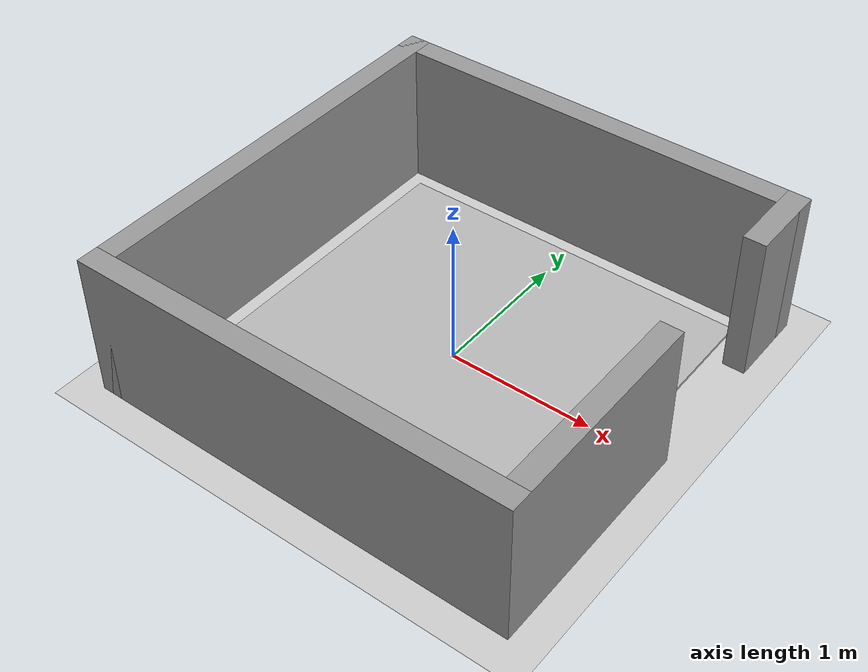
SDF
<?xml version="1.0" ?>
<sdf version="1.4">
  <world name="default">
    <!-- A global light source -->
    <include>
      <uri>model://sun</uri>
    </include>
    <!-- A ground plane -->
    <include>
      <uri>model://ground_plane</uri>
    </include>
    <include>
      <uri>model://planta1</uri>
    </include>

    <include>
      <uri>model://my_ground_plane</uri>
    </include>

  </world>
</sdf>

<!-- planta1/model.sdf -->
<sdf version='1.6'>
  <model name='planta1'>
    <link name='Wall_22'>
      <collision name='Wall_22_Collision'>
        <geometry>
          <box>
            <size>3 0.15 1</size>
          </box>
        </geometry>
        <pose frame=''>0 0 0.5 0 -0 0</pose>
      </collision>
      <visual name='Wall_22_Visual'>
        <pose frame=''>0 0 0.5 0 -0 0</pose>
        <geometry>
          <box>
            <size>3 0.15 1</size>
          </box>
        </geometry>
        <material>
          <script>
            <uri>file://media/materials/scripts/gazebo.material</uri>
            <name>Gazebo/Grey</name>
          </script>
          <ambient>1 1 1 1</ambient>
        </material>
      </visual>
      <pose frame=''>0 -1.425 0 0 -0 0</pose>
    </link>
    <link name='Wall_23'>
      <pose frame=''>1.425 0 0 0 -0 1.5708</pose>
      <visual name='Wall_23_Visual_0'>
        <pose frame=''>-0.724238 0 0.5 0 -0 0</pose>
        <geometry>
          <box>
            <size>1.55152 0.15 1</size>
          </box>
        </geometry>
        <material>
          <script>
            <uri>file://media/materials/scripts/gazebo.material</uri>
            <name>Gazebo/Grey</name>
          </script>
          <ambient>1 1 1 1</ambient>
        </material>
      </visual>
      <collision name='Wall_23_Collision_0'>
        <geometry>
          <box>
            <size>1.55152 0.15 1</size>
          </box>
        </geometry>
        <pose frame=''>-0.724238 0 0.5 0 -0 0</pose>
      </collision>
      <visual name='Wall_23_Visual_1'>
        <pose frame=''>1.22576 0 0.5 0 -0 0</pose>
        <geometry>
          <box>
            <size>0.548477 0.15 1</size>
          </box>
        </geometry>
        <material>
          <script>
            <uri>file://media/materials/scripts/gazebo.material</uri>
            <name>Gazebo/Grey</name>
          </script>
          <ambient>1 1 1 1</ambient>
        </material>
      </visual>
      <collision name='Wall_23_Collision_1'>
        <geometry>
          <box>
            <size>0.548477 0.15 1</size>
          </box>
        </geometry>
        <pose frame=''>1.22576 0 0.5 0 -0 0</pose>
      </collision>
    </link>
    <link name='Wall_24'>
      <collision name='Wall_24_Collision'>
        <geometry>
          <box>
            <size>3 0.15 1</size>
          </box>
        </geometry>
        <pose frame=''>0 0 0.5 0 -0 0</pose>
      </collision>
      <visual name='Wall_24_Visual'>
        <pose frame=''>0 0 0.5 0 -0 0</pose>
        <geometry>
          <box>
            <size>3 0.15 1</size>
          </box>
        </geometry>
        <material>
          <script>
            <uri>file://media/materials/scripts/gazebo.material</uri>
            <name>Gazebo/Grey</name>
          </script>
          <ambient>1 1 1 1</ambient>
        </material>
      </visual>
      <pose frame=''>0 1.425 0 0 -0 3.14159</pose>
    </link>
    <link name='Wall_25'>
      <collision name='Wall_25_Collision'>
        <geometry>
          <box>
            <size>3 0.15 1</size>
          </box>
        </geometry>
        <pose frame=''>0 0 0.5 0 -0 0</pose>
      </collision>
      <visual name='Wall_25_Visual'>
        <pose frame=''>0 0 0.5 0 -0 0</pose>
        <geometry>
          <box>
            <size>3 0.15 1</size>
          </box>
        </geometry>
        <material>
          <script>
            <uri>file://media/materials/scripts/gazebo.material</uri>
            <name>Gazebo/Grey</name>
          </script>
          <ambient>1 1 1 1</ambient>
        </material>
      </visual>
      <pose frame=''>-1.425 0 0 0 0 -1.5708</pose>
    </link>
    <static>1</static>
  </model>
</sdf>

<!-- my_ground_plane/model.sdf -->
<sdf version="1.5">
  <model name="my_ground_plane">
    <static>true</static>
    <link name="link">
      <collision name="collision">
        <geometry>
          <box>
            <size>2.5 2.5 .03</size>
          </box>
        </geometry>
      </collision>
      <visual name="visual">
        <cast_shadows>false</cast_shadows>
        <geometry>
          <box>
            <size>2.5 2.5 .03</size>
          </box>
        </geometry>
        <material>
          <script>
		  <uri>/home/relampago/catkin_ws/src/aulagazebo/models/my_ground_plane/materials/</uri>
		  <uri>/home/relampago/catkin_ws/src/aulagazebo/models/my_ground_plane/materials/</uri>
		  <name>/home/relampago/catkin_ws/src/aulagazebo/models/my_ground_plane/materials/textures/MyImage.png</name>
          </script>
        </material>
      </visual>
    </link>
  </model>
</sdf>
